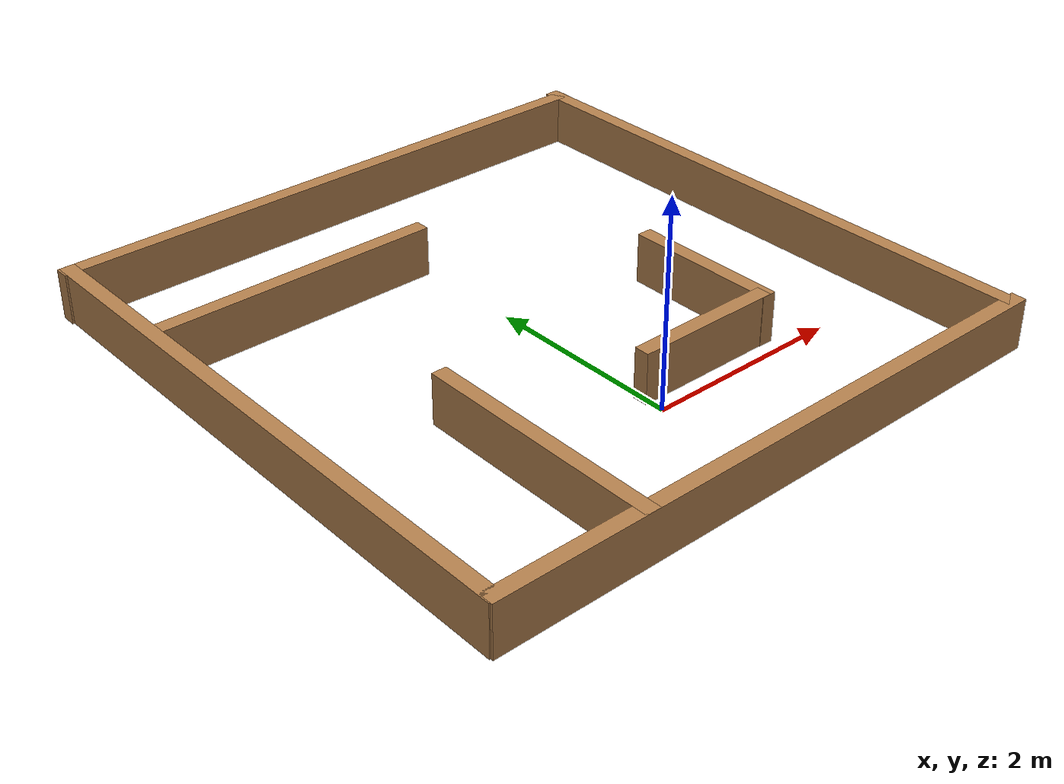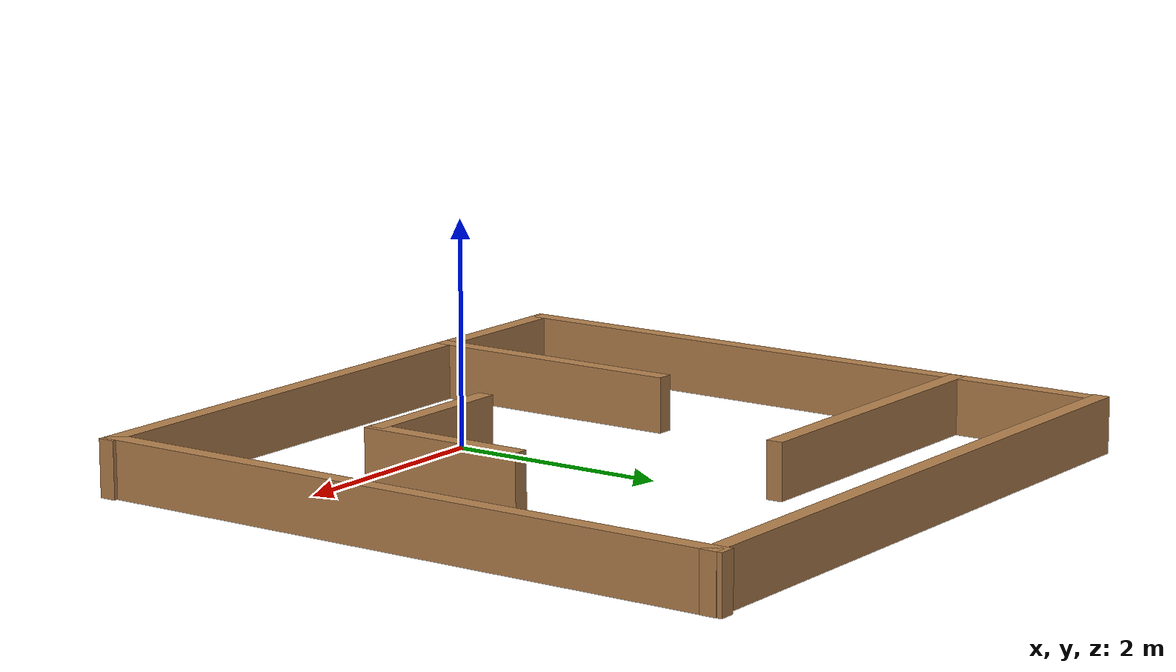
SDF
<?xml version='1.0'?>
<sdf version='1.6'>
  <model name='project_medium_v2'>
    <link name='Wall_0'>
      <pose frame=''>-0.00688 4.55592 0 0 -0 0</pose>
      <self_collide>0</self_collide>
      <enable_wind>0</enable_wind>
      <kinematic>0</kinematic>
      <inertial>
        <inertia>
          <ixx>0</ixx>
          <ixy>0</ixy>
          <ixz>0</ixz>
          <iyy>0</iyy>
          <iyz>0</iyz>
          <izz>0</izz>
        </inertia>
        <mass>0</mass>
        <pose frame=''>0 0 0 0 -0 0</pose>
      </inertial>
      <visual name='Wall_0_Visual'>
        <pose frame=''>0 0 0.25 0 -0 0</pose>
        <geometry>
          <box>
            <size>6.03775 0.15 0.5</size>
          </box>
        </geometry>
        <material>
          <script>
            <uri>file://media/materials/scripts/gazebo.material</uri>
            <name>Gazebo/Wood</name>
          </script>
          <ambient>1 1 1 1</ambient>
        </material>
        <transparency>0</transparency>
        <cast_shadows>1</cast_shadows>
      </visual>
      <collision name='Wall_0_Collision'>
        <laser_retro>0</laser_retro>
        <max_contacts>10</max_contacts>
        <pose frame=''>0 0 0.25 0 -0 0</pose>
        <geometry>
          <box>
            <size>6.03775 0.15 0.5</size>
          </box>
        </geometry>
        <surface>
          <friction>
            <ode>
              <mu>1</mu>
              <mu2>1</mu2>
              <fdir1>0 0 0</fdir1>
              <slip1>0</slip1>
              <slip2>0</slip2>
            </ode>
            <torsional>
              <coefficient>1</coefficient>
              <patch_radius>0</patch_radius>
              <surface_radius>0</surface_radius>
              <use_patch_radius>1</use_patch_radius>
              <ode>
                <slip>0</slip>
              </ode>
            </torsional>
          </friction>
          <bounce>
            <restitution_coefficient>0</restitution_coefficient>
            <threshold>1e+06</threshold>
          </bounce>
          <contact>
            <collide_without_contact>0</collide_without_contact>
            <collide_without_contact_bitmask>1</collide_without_contact_bitmask>
            <collide_bitmask>1</collide_bitmask>
            <ode>
              <soft_cfm>0</soft_cfm>
              <soft_erp>0.2</soft_erp>
              <kp>1e+13</kp>
              <kd>1</kd>
              <max_vel>0.01</max_vel>
              <min_depth>0</min_depth>
            </ode>
            <bullet>
              <split_impulse>1</split_impulse>
              <split_impulse_penetration_threshold>-0.01</split_impulse_penetration_threshold>
              <soft_cfm>0</soft_cfm>
              <soft_erp>0.2</soft_erp>
              <kp>1e+13</kp>
              <kd>1</kd>
            </bullet>
          </contact>
        </surface>
      </collision>
    </link>
    <link name='Wall_0_clone'>
      <pose frame=''>-1.52053 3.15822 0 0 -0 0</pose>
      <self_collide>0</self_collide>
      <enable_wind>0</enable_wind>
      <kinematic>0</kinematic>
      <inertial>
        <inertia>
          <ixx>0</ixx>
          <ixy>0</ixy>
          <ixz>0</ixz>
          <iyy>0</iyy>
          <iyz>0</iyz>
          <izz>0</izz>
        </inertia>
        <mass>0</mass>
        <pose frame=''>0 0 0 0 -0 0</pose>
      </inertial>
      <visual name='Wall_0_Visual'>
        <pose frame=''>0 0 0.25 0 -0 0</pose>
        <geometry>
          <box>
            <size>2.95345 0.15 0.5</size>
          </box>
        </geometry>
        <material>
          <script>
            <uri>file://media/materials/scripts/gazebo.material</uri>
            <name>Gazebo/Wood</name>
          </script>
          <ambient>1 1 1 1</ambient>
          <shader type='pixel'/>
        </material>
        <transparency>0</transparency>
        <cast_shadows>1</cast_shadows>
      </visual>
      <collision name='Wall_0_Collision'>
        <laser_retro>0</laser_retro>
        <max_contacts>10</max_contacts>
        <pose frame=''>0 0 0.25 0 -0 0</pose>
        <geometry>
          <box>
            <size>2.95345 0.15 0.5</size>
          </box>
        </geometry>
        <surface>
          <friction>
            <ode>
              <mu>1</mu>
              <mu2>1</mu2>
              <fdir1>0 0 0</fdir1>
              <slip1>0</slip1>
              <slip2>0</slip2>
            </ode>
            <torsional>
              <coefficient>1</coefficient>
              <patch_radius>0</patch_radius>
              <surface_radius>0</surface_radius>
              <use_patch_radius>1</use_patch_radius>
              <ode>
                <slip>0</slip>
              </ode>
            </torsional>
          </friction>
          <bounce>
            <restitution_coefficient>0</restitution_coefficient>
            <threshold>1e+06</threshold>
          </bounce>
          <contact>
            <collide_without_contact>0</collide_without_contact>
            <collide_without_contact_bitmask>1</collide_without_contact_bitmask>
            <collide_bitmask>1</collide_bitmask>
            <ode>
              <soft_cfm>0</soft_cfm>
              <soft_erp>0.2</soft_erp>
              <kp>1e+13</kp>
              <kd>1</kd>
              <max_vel>0.01</max_vel>
              <min_depth>0</min_depth>
            </ode>
            <bullet>
              <split_impulse>1</split_impulse>
              <split_impulse_penetration_threshold>-0.01</split_impulse_penetration_threshold>
              <soft_cfm>0</soft_cfm>
              <soft_erp>0.2</soft_erp>
              <kp>1e+13</kp>
              <kd>1</kd>
            </bullet>
          </contact>
        </surface>
      </collision>
    </link>
    <link name='Wall_2'>
      <pose frame=''>-2.93208 1.63826 0 0 0 -1.5708</pose>
      <self_collide>0</self_collide>
      <enable_wind>0</enable_wind>
      <kinematic>0</kinematic>
      <inertial>
        <inertia>
          <ixx>0</ixx>
          <ixy>0</ixy>
          <ixz>0</ixz>
          <iyy>0</iyy>
          <iyz>0</iyz>
          <izz>0</izz>
        </inertia>
        <mass>0</mass>
        <pose frame=''>0 0 0 0 -0 0</pose>
      </inertial>
      <visual name='Wall_2_Visual'>
        <pose frame=''>0 0 0.25 0 -0 0</pose>
        <geometry>
          <box>
            <size>5.98367 0.15 0.5</size>
          </box>
        </geometry>
        <material>
          <script>
            <uri>file://media/materials/scripts/gazebo.material</uri>
            <name>Gazebo/Wood</name>
          </script>
          <ambient>1 1 1 1</ambient>
        </material>
        <transparency>0</transparency>
        <cast_shadows>1</cast_shadows>
      </visual>
      <collision name='Wall_2_Collision'>
        <laser_retro>0</laser_retro>
        <max_contacts>10</max_contacts>
        <pose frame=''>0 0 0.25 0 -0 0</pose>
        <geometry>
          <box>
            <size>5.98367 0.15 0.5</size>
          </box>
        </geometry>
        <surface>
          <friction>
            <ode>
              <mu>1</mu>
              <mu2>1</mu2>
              <fdir1>0 0 0</fdir1>
              <slip1>0</slip1>
              <slip2>0</slip2>
            </ode>
            <torsional>
              <coefficient>1</coefficient>
              <patch_radius>0</patch_radius>
              <surface_radius>0</surface_radius>
              <use_patch_radius>1</use_patch_radius>
              <ode>
                <slip>0</slip>
              </ode>
            </torsional>
          </friction>
          <bounce>
            <restitution_coefficient>0</restitution_coefficient>
            <threshold>1e+06</threshold>
          </bounce>
          <contact>
            <collide_without_contact>0</collide_without_contact>
            <collide_without_contact_bitmask>1</collide_without_contact_bitmask>
            <collide_bitmask>1</collide_bitmask>
            <ode>
              <soft_cfm>0</soft_cfm>
              <soft_erp>0.2</soft_erp>
              <kp>1e+13</kp>
              <kd>1</kd>
              <max_vel>0.01</max_vel>
              <min_depth>0</min_depth>
            </ode>
            <bullet>
              <split_impulse>1</split_impulse>
              <split_impulse_penetration_threshold>-0.01</split_impulse_penetration_threshold>
              <soft_cfm>0</soft_cfm>
              <soft_erp>0.2</soft_erp>
              <kp>1e+13</kp>
              <kd>1</kd>
            </bullet>
          </contact>
        </surface>
      </collision>
    </link>
    <link name='Wall_2_clone'>
      <pose frame=''>-1.48586 -0.140032 0 0 0 -1.5708</pose>
      <self_collide>0</self_collide>
      <enable_wind>0</enable_wind>
      <kinematic>0</kinematic>
      <inertial>
        <inertia>
          <ixx>0</ixx>
          <ixy>0</ixy>
          <ixz>0</ixz>
          <iyy>0</iyy>
          <iyz>0</iyz>
          <izz>0</izz>
        </inertia>
        <mass>0</mass>
        <pose frame=''>0 0 0 0 -0 0</pose>
      </inertial>
      <visual name='Wall_2_Visual'>
        <pose frame=''>0 0 0.25 0 -0 0</pose>
        <geometry>
          <box>
            <size>2.46727 0.15 0.5</size>
          </box>
        </geometry>
        <material>
          <script>
            <uri>file://media/materials/scripts/gazebo.material</uri>
            <name>Gazebo/Wood</name>
          </script>
          <ambient>1 1 1 1</ambient>
          <shader type='pixel'/>
        </material>
        <transparency>0</transparency>
        <cast_shadows>1</cast_shadows>
      </visual>
      <collision name='Wall_2_Collision'>
        <laser_retro>0</laser_retro>
        <max_contacts>10</max_contacts>
        <pose frame=''>0 0 0.25 0 -0 0</pose>
        <geometry>
          <box>
            <size>2.46727 0.15 0.5</size>
          </box>
        </geometry>
        <surface>
          <friction>
            <ode>
              <mu>1</mu>
              <mu2>1</mu2>
              <fdir1>0 0 0</fdir1>
              <slip1>0</slip1>
              <slip2>0</slip2>
            </ode>
            <torsional>
              <coefficient>1</coefficient>
              <patch_radius>0</patch_radius>
              <surface_radius>0</surface_radius>
              <use_patch_radius>1</use_patch_radius>
              <ode>
                <slip>0</slip>
              </ode>
            </torsional>
          </friction>
          <bounce>
            <restitution_coefficient>0</restitution_coefficient>
            <threshold>1e+06</threshold>
          </bounce>
          <contact>
            <collide_without_contact>0</collide_without_contact>
            <collide_without_contact_bitmask>1</collide_without_contact_bitmask>
            <collide_bitmask>1</collide_bitmask>
            <ode>
              <soft_cfm>0</soft_cfm>
              <soft_erp>0.2</soft_erp>
              <kp>1e+13</kp>
              <kd>1</kd>
              <max_vel>0.01</max_vel>
              <min_depth>0</min_depth>
            </ode>
            <bullet>
              <split_impulse>1</split_impulse>
              <split_impulse_penetration_threshold>-0.01</split_impulse_penetration_threshold>
              <soft_cfm>0</soft_cfm>
              <soft_erp>0.2</soft_erp>
              <kp>1e+13</kp>
              <kd>1</kd>
            </bullet>
          </contact>
        </surface>
      </collision>
    </link>
    <link name='Wall_2_clone_0'>
      <pose frame=''>1.42546 0.915273 0 0 0 -1.5708</pose>
      <self_collide>0</self_collide>
      <enable_wind>0</enable_wind>
      <kinematic>0</kinematic>
      <inertial>
        <inertia>
          <ixx>0</ixx>
          <ixy>0</ixy>
          <ixz>0</ixz>
          <iyy>0</iyy>
          <iyz>0</iyz>
          <izz>0</izz>
        </inertia>
        <mass>0</mass>
        <pose frame=''>0 0 0 0 -0 0</pose>
      </inertial>
      <visual name='Wall_2_Visual'>
        <pose frame=''>0 0 0.25 0 -0 0</pose>
        <geometry>
          <box>
            <size>1.55086 0.15 0.5</size>
          </box>
        </geometry>
        <material>
          <script>
            <uri>file://media/materials/scripts/gazebo.material</uri>
            <name>Gazebo/Wood</name>
          </script>
          <ambient>1 1 1 1</ambient>
          <shader type='pixel'/>
        </material>
        <transparency>0</transparency>
        <cast_shadows>1</cast_shadows>
      </visual>
      <collision name='Wall_2_Collision'>
        <laser_retro>0</laser_retro>
        <max_contacts>10</max_contacts>
        <pose frame=''>0 0 0.25 0 -0 0</pose>
        <geometry>
          <box>
            <size>1.55086 0.15 0.5</size>
          </box>
        </geometry>
        <surface>
          <friction>
            <ode>
              <mu>1</mu>
              <mu2>1</mu2>
              <fdir1>0 0 0</fdir1>
              <slip1>0</slip1>
              <slip2>0</slip2>
            </ode>
            <torsional>
              <coefficient>1</coefficient>
              <patch_radius>0</patch_radius>
              <surface_radius>0</surface_radius>
              <use_patch_radius>1</use_patch_radius>
              <ode>
                <slip>0</slip>
              </ode>
            </torsional>
          </friction>
          <bounce>
            <restitution_coefficient>0</restitution_coefficient>
            <threshold>1e+06</threshold>
          </bounce>
          <contact>
            <collide_without_contact>0</collide_without_contact>
            <collide_without_contact_bitmask>1</collide_without_contact_bitmask>
            <collide_bitmask>1</collide_bitmask>
            <ode>
              <soft_cfm>0</soft_cfm>
              <soft_erp>0.2</soft_erp>
              <kp>1e+13</kp>
              <kd>1</kd>
              <max_vel>0.01</max_vel>
              <min_depth>0</min_depth>
            </ode>
            <bullet>
              <split_impulse>1</split_impulse>
              <split_impulse_penetration_threshold>-0.01</split_impulse_penetration_threshold>
              <soft_cfm>0</soft_cfm>
              <soft_erp>0.2</soft_erp>
              <kp>1e+13</kp>
              <kd>1</kd>
            </bullet>
          </contact>
        </surface>
      </collision>
    </link>
    <link name='Wall_3'>
      <pose frame=''>0.023663 -1.30223 0 0 -0 0</pose>
      <self_collide>0</self_collide>
      <enable_wind>0</enable_wind>
      <kinematic>0</kinematic>
      <inertial>
        <inertia>
          <ixx>0</ixx>
          <ixy>0</ixy>
          <ixz>0</ixz>
          <iyy>0</iyy>
          <iyz>0</iyz>
          <izz>0</izz>
        </inertia>
        <mass>0</mass>
        <pose frame=''>0 0 0 0 -0 0</pose>
      </inertial>
      <visual name='Wall_3_Visual'>
        <pose frame=''>0 0 0.25 0 -0 0</pose>
        <geometry>
          <box>
            <size>6.03891 0.15 0.5</size>
          </box>
        </geometry>
        <material>
          <script>
            <uri>file://media/materials/scripts/gazebo.material</uri>
            <name>Gazebo/Wood</name>
          </script>
          <ambient>1 1 1 1</ambient>
        </material>
        <transparency>0</transparency>
        <cast_shadows>1</cast_shadows>
      </visual>
      <collision name='Wall_3_Collision'>
        <laser_retro>0</laser_retro>
        <max_contacts>10</max_contacts>
        <pose frame=''>0 0 0.25 0 -0 0</pose>
        <geometry>
          <box>
            <size>6.03891 0.15 0.5</size>
          </box>
        </geometry>
        <surface>
          <friction>
            <ode>
              <mu>1</mu>
              <mu2>1</mu2>
              <fdir1>0 0 0</fdir1>
              <slip1>0</slip1>
              <slip2>0</slip2>
            </ode>
            <torsional>
              <coefficient>1</coefficient>
              <patch_radius>0</patch_radius>
              <surface_radius>0</surface_radius>
              <use_patch_radius>1</use_patch_radius>
              <ode>
                <slip>0</slip>
              </ode>
            </torsional>
          </friction>
          <bounce>
            <restitution_coefficient>0</restitution_coefficient>
            <threshold>1e+06</threshold>
          </bounce>
          <contact>
            <collide_without_contact>0</collide_without_contact>
            <collide_without_contact_bitmask>1</collide_without_contact_bitmask>
            <collide_bitmask>1</collide_bitmask>
            <ode>
              <soft_cfm>0</soft_cfm>
              <soft_erp>0.2</soft_erp>
              <kp>1e+13</kp>
              <kd>1</kd>
              <max_vel>0.01</max_vel>
              <min_depth>0</min_depth>
            </ode>
            <bullet>
              <split_impulse>1</split_impulse>
              <split_impulse_penetration_threshold>-0.01</split_impulse_penetration_threshold>
              <soft_cfm>0</soft_cfm>
              <soft_erp>0.2</soft_erp>
              <kp>1e+13</kp>
              <kd>1</kd>
            </bullet>
          </contact>
        </surface>
      </collision>
    </link>
    <link name='Wall_3_clone'>
      <pose frame=''>0.699294 0.220437 0 0 -0 0</pose>
      <self_collide>0</self_collide>
      <enable_wind>0</enable_wind>
      <kinematic>0</kinematic>
      <inertial>
        <inertia>
          <ixx>0</ixx>
          <ixy>0</ixy>
          <ixz>0</ixz>
          <iyy>0</iyy>
          <iyz>0</iyz>
          <izz>0</izz>
        </inertia>
        <mass>0</mass>
        <pose frame=''>0 0 0 0 -0 0</pose>
      </inertial>
      <visual name='Wall_3_Visual'>
        <pose frame=''>0 0 0.25 0 -0 0</pose>
        <geometry>
          <box>
            <size>1.49871 0.15 0.5</size>
          </box>
        </geometry>
        <material>
          <script>
            <uri>file://media/materials/scripts/gazebo.material</uri>
            <name>Gazebo/Wood</name>
          </script>
          <ambient>1 1 1 1</ambient>
          <shader type='pixel'/>
        </material>
        <transparency>0</transparency>
        <cast_shadows>1</cast_shadows>
      </visual>
      <collision name='Wall_3_Collision'>
        <laser_retro>0</laser_retro>
        <max_contacts>10</max_contacts>
        <pose frame=''>0 0 0.25 0 -0 0</pose>
        <geometry>
          <box>
            <size>1.49871 0.15 0.5</size>
          </box>
        </geometry>
        <surface>
          <friction>
            <ode>
              <mu>1</mu>
              <mu2>1</mu2>
              <fdir1>0 0 0</fdir1>
              <slip1>0</slip1>
              <slip2>0</slip2>
            </ode>
            <torsional>
              <coefficient>1</coefficient>
              <patch_radius>0</patch_radius>
              <surface_radius>0</surface_radius>
              <use_patch_radius>1</use_patch_radius>
              <ode>
                <slip>0</slip>
              </ode>
            </torsional>
          </friction>
          <bounce>
            <restitution_coefficient>0</restitution_coefficient>
            <threshold>1e+06</threshold>
          </bounce>
          <contact>
            <collide_without_contact>0</collide_without_contact>
            <collide_without_contact_bitmask>1</collide_without_contact_bitmask>
            <collide_bitmask>1</collide_bitmask>
            <ode>
              <soft_cfm>0</soft_cfm>
              <soft_erp>0.2</soft_erp>
              <kp>1e+13</kp>
              <kd>1</kd>
              <max_vel>0.01</max_vel>
              <min_depth>0</min_depth>
            </ode>
            <bullet>
              <split_impulse>1</split_impulse>
              <split_impulse_penetration_threshold>-0.01</split_impulse_penetration_threshold>
              <soft_cfm>0</soft_cfm>
              <soft_erp>0.2</soft_erp>
              <kp>1e+13</kp>
              <kd>1</kd>
            </bullet>
          </contact>
        </surface>
      </collision>
    </link>
    <link name='Wall_4'>
      <pose frame=''>2.93188 1.65955 0 0 -0 1.5708</pose>
      <self_collide>0</self_collide>
      <enable_wind>0</enable_wind>
      <kinematic>0</kinematic>
      <inertial>
        <inertia>
          <ixx>0</ixx>
          <ixy>0</ixy>
          <ixz>0</ixz>
          <iyy>0</iyy>
          <iyz>0</iyz>
          <izz>0</izz>
        </inertia>
        <mass>0</mass>
        <pose frame=''>0 0 0 0 -0 0</pose>
      </inertial>
      <visual name='Wall_4_Visual'>
        <pose frame=''>0 0 0.25 0 -0 0</pose>
        <geometry>
          <box>
            <size>6.03543 0.15 0.5</size>
          </box>
        </geometry>
        <material>
          <script>
            <uri>file://media/materials/scripts/gazebo.material</uri>
            <name>Gazebo/Wood</name>
          </script>
          <ambient>1 1 1 1</ambient>
        </material>
        <transparency>0</transparency>
        <cast_shadows>1</cast_shadows>
      </visual>
      <collision name='Wall_4_Collision'>
        <laser_retro>0</laser_retro>
        <max_contacts>10</max_contacts>
        <pose frame=''>0 0 0.25 0 -0 0</pose>
        <geometry>
          <box>
            <size>6.03543 0.15 0.5</size>
          </box>
        </geometry>
        <surface>
          <friction>
            <ode>
              <mu>1</mu>
              <mu2>1</mu2>
              <fdir1>0 0 0</fdir1>
              <slip1>0</slip1>
              <slip2>0</slip2>
            </ode>
            <torsional>
              <coefficient>1</coefficient>
              <patch_radius>0</patch_radius>
              <surface_radius>0</surface_radius>
              <use_patch_radius>1</use_patch_radius>
              <ode>
                <slip>0</slip>
              </ode>
            </torsional>
          </friction>
          <bounce>
            <restitution_coefficient>0</restitution_coefficient>
            <threshold>1e+06</threshold>
          </bounce>
          <contact>
            <collide_without_contact>0</collide_without_contact>
            <collide_without_contact_bitmask>1</collide_without_contact_bitmask>
            <collide_bitmask>1</collide_bitmask>
            <ode>
              <soft_cfm>0</soft_cfm>
              <soft_erp>0.2</soft_erp>
              <kp>1e+13</kp>
              <kd>1</kd>
              <max_vel>0.01</max_vel>
              <min_depth>0</min_depth>
            </ode>
            <bullet>
              <split_impulse>1</split_impulse>
              <split_impulse_penetration_threshold>-0.01</split_impulse_penetration_threshold>
              <soft_cfm>0</soft_cfm>
              <soft_erp>0.2</soft_erp>
              <kp>1e+13</kp>
              <kd>1</kd>
            </bullet>
          </contact>
        </surface>
      </collision>
    </link>
    <static>1</static>
    <allow_auto_disable>1</allow_auto_disable>
  </model>
</sdf>
